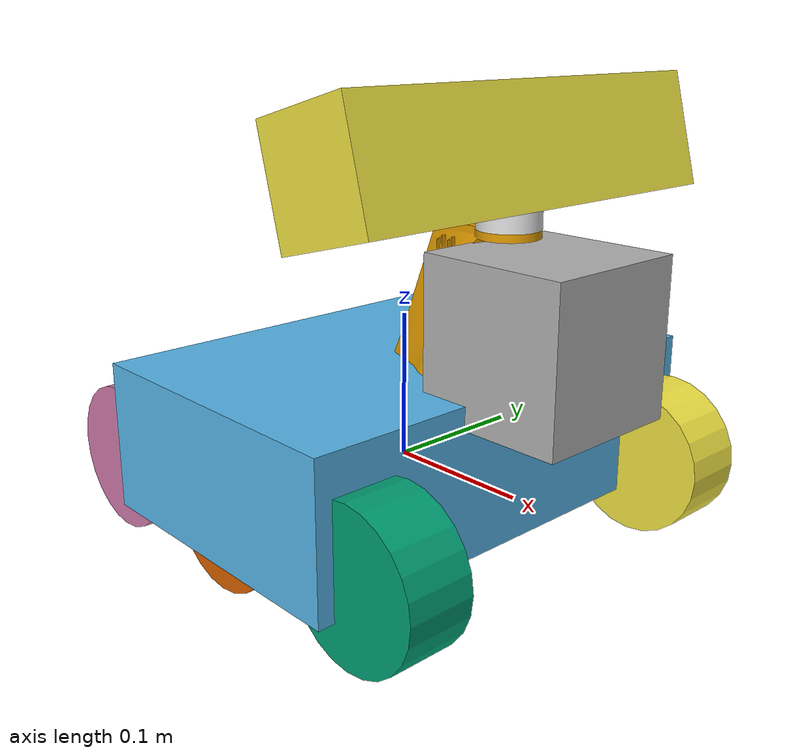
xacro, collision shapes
<?xml version="1.0"?>

<robot name="six_bot" xmlns:xacro="http://www.ros.org/wiki/xacro">
  <xacro:include filename="$(find six_bot)/urdf/six_bot.gazebo"/>
  <xacro:include filename="$(find six_bot)/urdf/sensors/kinect.urdf.xacro"/>

  <link name="robot_footprint"></link>

  <joint type="fixed" name="robot_footprint_joint">
    <origin xyz="0 0 0" rpy="0 0 0"/>
    <parent link="robot_footprint"/>
    <child link="chassis"/>
  </joint>

  <link name="chassis">
    <pose>0 0 0.1 0 0 0</pose>

    <inertial>
      <mass value="15.0"/>
      <origin xyz="0 0 0" rpy="0 0 0"/>
      <inertia
          ixx="0.1" ixy="0" ixz="0"
          iyy="0.1" iyz="0"
          izz="0.1"
      />
    </inertial>

    <collision name="collision">
      <origin xyz="0 0 0.025" rpy="0 0 1.570796"/>
      <geometry>
        <!--mesh filename="package://six_bot/meshes/chassisMETREC3.dae"/-->
        <box size=".32 .21 .1"/>
      </geometry>
    </collision>

    <visual name="chassis_visual">
      <origin xyz="0 0 0" rpy="0 0 1.570796"/>
      <geometry>
        <mesh filename="package://six_bot/meshes/chassisMETREC3.dae"/>
      </geometry>
    </visual>
  </link>

  <link name="right_wheel1">
    <collision name="right_wheel1_collision">
      <origin xyz="0 -0.02636289 0" rpy="1.5707963267940 0 0"/> 26.36289
      <geometry>
        <!--mesh filename="package://six_bot/meshes/UdacistoneMeterC3.dae"/-->
        <cylinder length="0.045" radius="0.05"/>
      </geometry>
    </collision>

    <inertial>
      <mass value="5.0"/>
      <origin xyz="0 0 0" rpy="0 0 0"/>
      <inertia
          ixx="0.1" ixy="0" ixz="0"
          iyy="0.1" iyz="0"
          izz="0.1" />
    </inertial>

    <visual name="right_wheel1_visual">
      <origin xyz="0 -0.02636289 0" rpy="1.570796 0 0"/>
      <geometry>
        <mesh filename="package://six_bot/meshes/UdacistoneMeterC1.dae"/>
      </geometry>
    </visual>

  </link>

  <joint type="continuous" name="right_wheel1_hinge">
    <origin xyz="0.115 -0.10 0.00" rpy="0 0 0"/>
    <child link="right_wheel1"/>
    <parent link="chassis"/>
    <axis xyz="0 1 0" rpy="0 0 0"/>
    <limit effort="10000" velocity="1000"/>
    <dynamics damping="1.0" friction="1.0"/>

  </joint>

  <link name="left_wheel1">
    <inertial>
      <mass value="5.0"/>
      <origin xyz="0 0 0" rpy="0 0 0"/>
      <inertia
          ixx="0.1" ixy="0" ixz="0"
          iyy="0.1" iyz="0"
          izz="0.1" />
    </inertial>

    <collision name="left_wheel1_collision">
      <origin xyz="0 0.02636289 0" rpy="-1.5707963267940 0 0"/>
      <geometry>
        <!--mesh filename="package://six_bot/meshes/UdacistoneMeterC3.dae"/-->
        <cylinder length="0.045" radius="0.05"/>
      </geometry>
    </collision>

    <visual name="left_wheel1_visual">
      <origin xyz="0 0.02636289 0" rpy="-1.5707963267940 0 0"/>
      <geometry>
	<mesh filename="package://six_bot/meshes/UdacistoneMeterC1.dae"/>
      </geometry>
    </visual>

  </link>

  <joint type="continuous" name="left_wheel1_hinge">
    <origin xyz="0.115 0.10 0.00" rpy="0 0 0"/>
    <child link="left_wheel1"/>
    <parent link="chassis"/>
    <axis xyz="0 1 0" rpy="0 0 0"/>
    <limit effort="10000" velocity="1000"/>
    <dynamics damping="1.0" friction="1.0"/>

  </joint>

  <link name="left_wheel2">
    <inertial>
      <mass value="5.0"/>
      <origin xyz="0 0 0" rpy="0 0 0"/>
      <inertia
          ixx="0.1" ixy="0" ixz="0"
          iyy="0.1" iyz="0"
          izz="0.1" />
    </inertial>

    <collision name="left_wheel2_collision">
      <origin xyz="0 0.02636289 0" rpy="-1.5707963267940 0 0"/>
      <geometry>
        <!--mesh filename="package://six_bot/meshes/UdacistoneMeterC3.dae"/-->
        <cylinder length="0.045" radius="0.05"/>
      </geometry>
    </collision>

    <visual name="left_wheel2_visual">
      <origin xyz="0 0.02636289 0" rpy="-1.570796 0 0"/>
      <geometry>
	<mesh filename="package://six_bot/meshes/UdacistoneMeterC1.dae"/>

      </geometry>
    </visual>

  </link>

  <joint type="continuous" name="left_wheel2_hinge">
    <origin xyz="-0.005 0.10 0.00" rpy="0 0 0"/>
    <child link="left_wheel2"/>
    <parent link="chassis"/>
    <axis xyz="0 1 0" rpy="0 0 0"/>
    <limit effort="10000" velocity="1000"/>
    <dynamics damping="1.0" friction="1.0"/>

  </joint>

  <link name="right_wheel2">
    <collision name="right_wheel2_collision">
      <origin xyz="0 -0.02636289 0" rpy="1.5707963267940 0 0"/>
      <geometry>
        <!--mesh filename="package://six_bot/meshes/UdacistoneMeterC3.dae"/-->
        <cylinder length="0.045" radius="0.05"/>
      </geometry>
    </collision>

    <inertial>
      <mass value="5.0"/>
      <origin xyz="0 0 0" rpy="0 0 0"/>
      <inertia
          ixx="0.1" ixy="0" ixz="0"
          iyy="0.1" iyz="0"
          izz="0.1" />
    </inertial>

    <visual name="right_wheel2_visual">
      <origin xyz="0 -0.02636289 0" rpy="1.5707963267940 0 0"/>
      <geometry>
        <mesh filename="package://six_bot/meshes/UdacistoneMeterC1.dae"/>
      </geometry>
    </visual>

  </link>

  <joint type="continuous" name="right_wheel2_hinge">
    <origin xyz="-0.005 -0.10 0.00" rpy="0 0 0"/>
    <child link="right_wheel2"/>
    <parent link="chassis"/>
    <axis xyz="0 1 0" rpy="0 0 0"/>
    <limit effort="10000" velocity="1000"/>
    <dynamics damping="1.0" friction="1.0"/>

  </joint>

  <link name="right_wheel3">
    <collision name="right_wheel3_collision">
      <origin xyz="0 -0.02636289 0" rpy="1.5707963267940 0 0"/>
      <geometry>
        <!--mesh filename="package://six_bot/meshes/UdacistoneMeterC3.dae"/-->
        <cylinder length="0.045" radius="0.05"/>
      </geometry>
    </collision>

    <inertial>
      <mass value="5.0"/>
      <origin xyz="0 0 0" rpy="0 0 0"/>
      <inertia
          ixx="0.1" ixy="0" ixz="0"
          iyy="0.1" iyz="0"
          izz="0.1" />
    </inertial>

    <visual name="right_wheel3_visual">
      <origin xyz="0 -0.02636289 0" rpy="1.5707963267940 0 0"/>
      <geometry>
        <mesh filename="package://six_bot/meshes/UdacistoneMeterC1.dae"/>
      </geometry>
    </visual>

  </link>

  <joint type="continuous" name="right_wheel3_hinge">
    <origin xyz="-0.125 -0.1 0.00" rpy="0 0 0"/>
    <child link="right_wheel3"/>
    <parent link="chassis"/>
    <axis xyz="0 1 0" rpy="0 0 0"/>
    <limit effort="10000" velocity="1000"/>
    <dynamics damping="1.0" friction="1.0"/>

  </joint>

  <link name="left_wheel3">
    <inertial>
      <mass value="5.0"/>
      <origin xyz="0 0 0" rpy="0 0 0"/>
      <inertia
          ixx="0.1" ixy="0" ixz="0"
          iyy="0.1" iyz="0"
          izz="0.1" />
    </inertial>

    <collision name="left_wheel3_collision">
      <origin xyz="0 0.02636289 0" rpy="-1.5707963267940 0 0"/>
      <geometry>
        <!--mesh filename="package://six_bot/meshes/UdacistoneMeterC3.dae"/-->
        <cylinder length="0.045" radius="0.05"/>
      </geometry>
    </collision>

    <visual name="left_wheel3_visual">
      <origin xyz="0 0.02636289 0" rpy="-1.5707963267940 0 0"/>
      <geometry>
	<mesh filename="package://six_bot/meshes/UdacistoneMeterC1.dae"/>
      </geometry>
    </visual>

  </link>

  <joint type="continuous" name="left_wheel3_hinge">
    <origin xyz="-0.125 0.10 0.00" rpy="0 0 0"/>
    <child link="left_wheel3"/>
    <parent link="chassis"/>
    <axis xyz="0 1 0" rpy="0 0 0"/>
    <limit effort="10000" velocity="1000"/>
    <dynamics damping="1.0" friction="1.0"/>

  </joint>

<link name="tower">
    <collision name="tower_collision">
      <origin xyz="0 0 0" rpy="0 0 1.5707963267940"/>
        <geometry>
	  <mesh filename="package://six_bot/meshes/tower.dae"/>
          <!--box size="0.05 0.05 0.09"/-->
          <!-- box size="0.1 0.1 0.1"/-->
        </geometry>
    </collision>

    <inertial>
      <mass value="0.1"/>
      <origin xyz="0 0 0" rpy="0 0 0"/>
      <inertia
          ixx="1e-6" ixy="0" ixz="0"
          iyy="1e-6" iyz="0"
          izz="1e-6" />
    </inertial>

    <visual name="tower_visual">
      <origin xyz="0 0 0" rpy="0 0 1.5707963267940"/>
      <geometry>
        <mesh filename="package://six_bot/meshes/tower.dae"/>
      </geometry>
    </visual>
  </link>

  <joint type="fixed" name="tower_joint">
    <origin xyz="0.055 0 0.075" rpy="0 0 0"/>
    <child link="tower"/>
    <parent link="chassis"/>
  </joint>

  <xacro:sensor_kinect parent="tower_angle"/>
    <!--origin xyz="0.0 0 0.1" rpy="0 0 0" /-->
  <!--/xacro:sensor_kinect-->

<link name="tower_angle">
    <collision name="tower_angle_collision">
      <origin xyz="0 0 0" rpy="0 0 1.5707963267940"/>
        <geometry>
	  <mesh filename="package://six_bot/meshes/towerangle.dae"/>
          <!--box size="0.05 0.05 0.09"/-->
          <!-- box size="0.1 0.1 0.1"/-->
        </geometry>
    </collision>

    <inertial>
      <mass value="0.01"/>
      <origin xyz="0 0 0" rpy="0 0 0"/>
      <inertia
          ixx="0" ixy="0" ixz="0"
          iyy="0" iyz="0"
          izz="0" />
    </inertial>

    <visual name="tower_angle_visual">
      <origin xyz="0 0 0" rpy="0 0 1.5707963267940"/>
      <geometry>
        <mesh filename="package://six_bot/meshes/towerangle.dae"/>
      </geometry>
    </visual>
  </link>

  <joint type="fixed" name="tower_angle_joint">
    <origin xyz="0.035 0 0.095" rpy="0 0 0"/>
    <child link="tower_angle"/>
    <parent link="tower"/>
  </joint>

<link name="hokuyo">
    <collision name="hokuyo_collision">
      <origin xyz="0 0 0" rpy="0 0 0"/>
        <geometry>
          <box size="0.1 0.1 0.1"/>
          <!-- box size="0.1 0.1 0.1"/-->
        </geometry>
    </collision>

    <inertial>
      <mass value="0.1"/>
      <origin xyz="0 0 0" rpy="0 0 0"/>
      <inertia
          ixx="1e-6" ixy="0" ixz="0"
          iyy="1e-6" iyz="0"
          izz="1e-6" />
    </inertial>

    <visual name="hokuyo_visual">
      <origin xyz="0 0 0" rpy="0 0 0"/>
      <geometry>
        <mesh filename="package://six_bot/meshes/hokuyo.dae"/>
      </geometry>
    </visual>

  </link>

  <joint type="fixed" name="hokuyo_joint">
    <origin xyz="0.12 0 0.11" rpy="0 0 0"/>
    <child link="hokuyo"/>
    <parent link="chassis"/>
  </joint>

</robot>

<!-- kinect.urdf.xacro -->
<robot name="six_bot" xmlns:xacro="http://www.ros.org/wiki/xacro">
  <xacro:include filename="$(find six_bot)/urdf/six_bot.gazebo"/>
  <xacro:include filename="$(find six_bot)/urdf/turtlebot_properties.urdf.xacro"/>

  <xacro:property name="kinect_cam_py" value="0"/>
  <!-- Parameterised in part by the values in turtlebot_properties.urdf.xacro -->
  <xacro:macro name="sensor_kinect" params="parent">
    <joint name="camera_rgb_joint" type="fixed">
      <!--origin xyz="${cam_px} ${kinect_cam_py} ${cam_pz}" rpy="${cam_or} ${cam_op} ${cam_oy}"/-->
      <origin xyz="0.02 0 0.05" rpy="0 -0.2617994 0"/>
	<!--origin xyz="0.035 0 0.13" rpy="0 -0.3490659 0"/-->
      <!--insert_block name="origin" /-->
      <parent link="${parent}"/>
      <child link="camera_rgb_frame" />
    </joint>
    <link name="camera_rgb_frame"/>

    <joint name="camera_rgb_optical_joint" type="fixed">
      <origin xyz="0 0 0" rpy="${-3.14159/2} 0 ${-3.14159/2}" />
      <parent link="camera_rgb_frame" />
      <child link="camera_rgb_optical_frame" />
    </joint>
    <link name="camera_rgb_optical_frame"/>

    <joint name="camera_joint1" type="fixed">
      <origin xyz="-0.031 ${-kinect_cam_py} 0" rpy="0 0 0"/>
      <parent link="camera_rgb_frame"/>
      <child link="camera_link"/>
    </joint>
      <link name="camera_link">
      <visual>
       <origin xyz="0 0 0" rpy="0 0 ${3.14159/2}"/>
        <geometry>
         <mesh filename="package://six_bot/meshes/sensors/kinect.dae"/>
        </geometry>
      </visual>
  	  <collision>
        <origin xyz="0.0 0.0 0.0" rpy="0 0 0"/>
  	    <geometry>
  	      <box size="0.07271 0.27794 0.073"/>
  	    </geometry>
  	  </collision>
      <inertial>
        <mass value="0.564" />
        <origin xyz="0 0 0" />
        <inertia ixx="0.003881243" ixy="0.0" ixz="0.0"
                 iyy="0.000498940" iyz="0.0"
                 izz="0.003879257" />
      </inertial>
    </link>

	<joint name="camera_depth_joint" type="fixed">
	  <origin xyz="0 ${2 * -kinect_cam_py} 0" rpy="0 0 0" />
	  <parent link="camera_rgb_frame" />
	  <child link="camera_depth_frame" />
	</joint>
	<link name="camera_depth_frame"/>

	<joint name="camera_depth_optical_joint" type="fixed">
	  <origin xyz="0 0 0" rpy="${-3.14159/2} 0 ${-3.14159/2}" />
	  <parent link="camera_depth_frame" />
	  <child link="camera_depth_optical_frame" />
	</joint>
	<link name="camera_depth_optical_frame"/>

	<!-- Kinect sensor for simulation -->
	<sixbot_sim_3dsensor/>
  </xacro:macro>
</robot>
